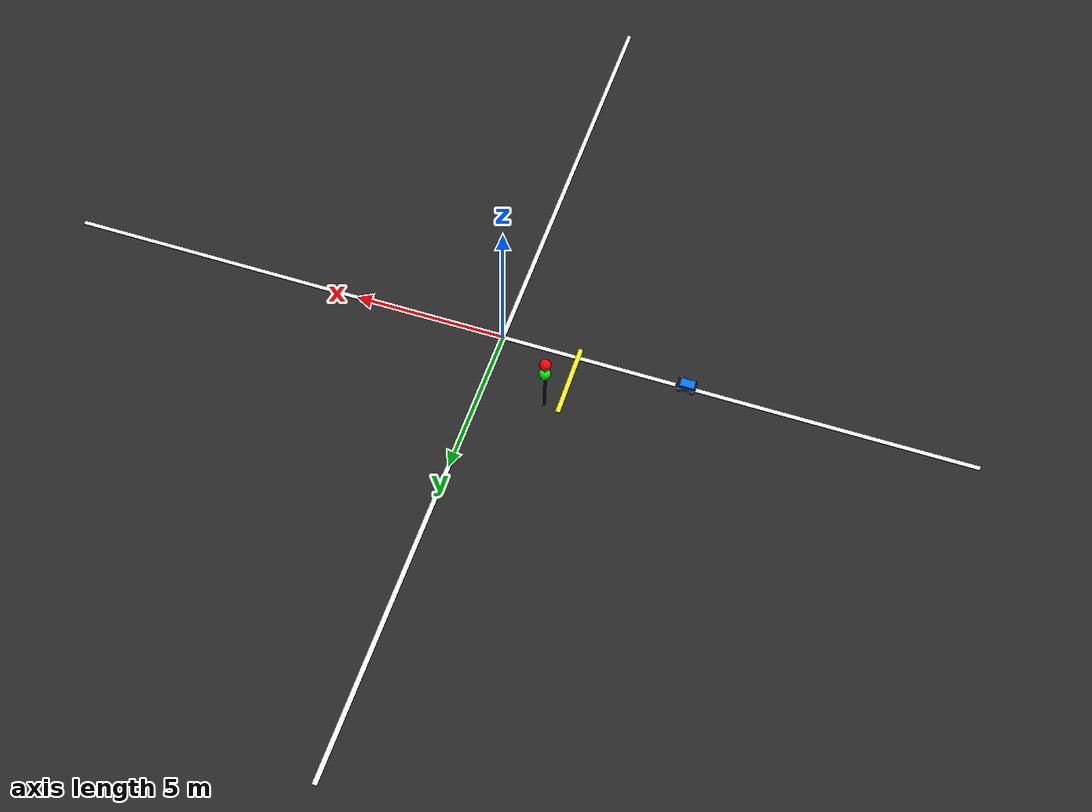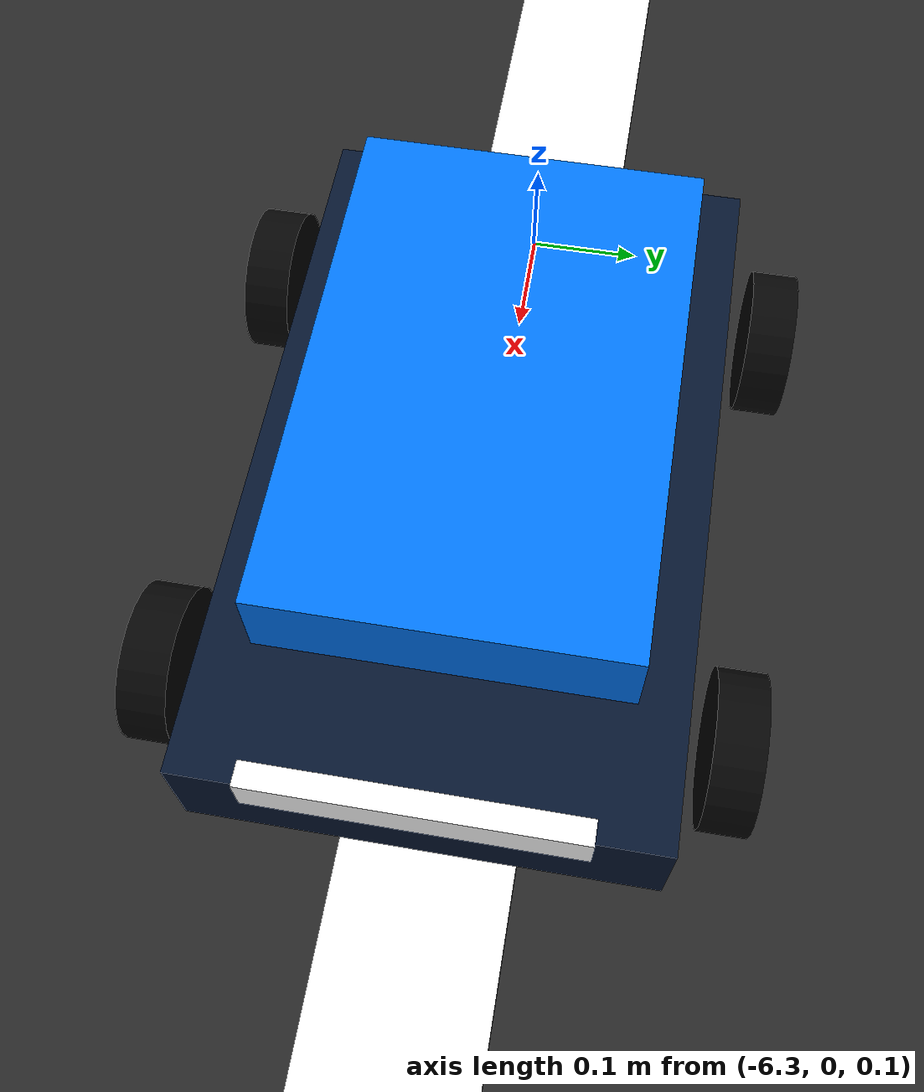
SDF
<?xml version="1.0" ?>
<sdf version="1.9">
  <world name="traffic_light_grid_world">
    <physics name="1ms" type="ignored"><max_step_size>0.001</max_step_size><real_time_factor>1.0</real_time_factor></physics>
    <plugin filename="gz-sim-physics-system" name="gz::sim::systems::Physics"/>
    <plugin filename="gz-sim-user-commands-system" name="gz::sim::systems::UserCommands"/>
    <plugin filename="gz-sim-scene-broadcaster-system" name="gz::sim::systems::SceneBroadcaster"/>
    <light type="directional" name="sun"><pose>0 0 10 0 0 0</pose><diffuse>0.8 0.8 0.8 1</diffuse><direction>-0.5 0.1 -0.9</direction></light>
    <model name="ground"><static>true</static><link name="ground_link"><collision name="collision"><geometry><plane><normal>0 0 1</normal><size>40 40</size></plane></geometry></collision><visual name="visual"><geometry><plane><normal>0 0 1</normal><size>40 40</size></plane></geometry><material><diffuse>0.15 0.15 0.15 1</diffuse></material></visual></link></model>
    <model name="intersection_markings"><static>true</static><link name="link">
      <visual name="east_west"><pose>0 0 0.012 0 0 0</pose><geometry><box><size>30 0.15 0.02</size></box></geometry><material><diffuse>1 1 1 1</diffuse></material></visual>
      <visual name="north_south"><pose>0 0 0.012 0 0 0</pose><geometry><box><size>0.15 30 0.02</size></box></geometry><material><diffuse>1 1 1 1</diffuse></material></visual>
      <visual name="stop_line"><pose>-2.5 0.9 0.015 0 0 0</pose><geometry><box><size>0.15 2.5 0.025</size></box></geometry><material><diffuse>1 1 0 1</diffuse></material></visual>
    </link></model>
    <model name="traffic_lights"><static>true</static><link name="link">
      <visual name="pole1"><pose>-2 2 1 0 0 0</pose><geometry><cylinder><radius>0.06</radius><length>2</length></cylinder></geometry><material><diffuse>0.05 0.05 0.05 1</diffuse></material></visual>
      <visual name="red1"><pose>-2 2 2.1 0 0 0</pose><geometry><sphere><radius>0.18</radius></sphere></geometry><material><diffuse>1 0 0 1</diffuse></material></visual>
      <visual name="green1"><pose>-2 2 1.65 0 0 0</pose><geometry><sphere><radius>0.18</radius></sphere></geometry><material><diffuse>0 1 0 1</diffuse></material></visual>
    </link></model>

    <!-- QCar-style robot included for Plan B demos. If you already spawned an official QCar, delete/ignore this include. -->
    <include>
      <uri>model://qcar_planb</uri>
      <name>qcar</name>
      <pose>-6 0 0.12 0 0 0</pose>
    </include>
  </world>
</sdf>

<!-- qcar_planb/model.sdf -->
<sdf version="1.9">
  <model name="qcar_planb">
    <pose>0 0 0.12 0 0 0</pose>

    <link name="base_link">
      <inertial>
        <mass>5.0</mass>
        <inertia><ixx>0.18</ixx><iyy>0.22</iyy><izz>0.28</izz></inertia>
      </inertial>
      <collision name="body_collision">
        <geometry><box><size>0.58 0.36 0.16</size></box></geometry>
      </collision>
      <visual name="lower_chassis">
        <pose>0 0 0.02 0 0 0</pose>
        <geometry><box><size>0.62 0.38 0.10</size></box></geometry>
        <material><ambient>0.02 0.08 0.18 1</ambient><diffuse>0.02 0.08 0.18 1</diffuse></material>
      </visual>
      <visual name="top_cover">
        <pose>-0.03 0 0.105 0 0 0</pose>
        <geometry><box><size>0.46 0.30 0.08</size></box></geometry>
        <material><ambient>0.0 0.45 0.95 1</ambient><diffuse>0.0 0.45 0.95 1</diffuse></material>
      </visual>
      <visual name="front_marker">
        <pose>0.31 0 0.08 0 0 0</pose>
        <geometry><box><size>0.02 0.26 0.04</size></box></geometry>
        <material><ambient>1 1 1 1</ambient><diffuse>1 1 1 1</diffuse></material>
      </visual>
    </link>

    <link name="front_left_wheel">
      <pose>0.20 0.23 0.0 1.5708 0 0</pose>
      <collision name="collision"><geometry><cylinder><radius>0.065</radius><length>0.04</length></cylinder></geometry></collision>
      <visual name="visual"><geometry><cylinder><radius>0.065</radius><length>0.04</length></cylinder></geometry><material><ambient>0.02 0.02 0.02 1</ambient><diffuse>0.02 0.02 0.02 1</diffuse></material></visual>
    </link>
    <link name="rear_left_wheel">
      <pose>-0.20 0.23 0.0 1.5708 0 0</pose>
      <collision name="collision"><geometry><cylinder><radius>0.065</radius><length>0.04</length></cylinder></geometry></collision>
      <visual name="visual"><geometry><cylinder><radius>0.065</radius><length>0.04</length></cylinder></geometry><material><ambient>0.02 0.02 0.02 1</ambient><diffuse>0.02 0.02 0.02 1</diffuse></material></visual>
    </link>
    <link name="front_right_wheel">
      <pose>0.20 -0.23 0.0 1.5708 0 0</pose>
      <collision name="collision"><geometry><cylinder><radius>0.065</radius><length>0.04</length></cylinder></geometry></collision>
      <visual name="visual"><geometry><cylinder><radius>0.065</radius><length>0.04</length></cylinder></geometry><material><ambient>0.02 0.02 0.02 1</ambient><diffuse>0.02 0.02 0.02 1</diffuse></material></visual>
    </link>
    <link name="rear_right_wheel">
      <pose>-0.20 -0.23 0.0 1.5708 0 0</pose>
      <collision name="collision"><geometry><cylinder><radius>0.065</radius><length>0.04</length></cylinder></geometry></collision>
      <visual name="visual"><geometry><cylinder><radius>0.065</radius><length>0.04</length></cylinder></geometry><material><ambient>0.02 0.02 0.02 1</ambient><diffuse>0.02 0.02 0.02 1</diffuse></material></visual>
    </link>

    <joint name="front_left_wheel_joint" type="revolute"><parent>base_link</parent><child>front_left_wheel</child><axis><xyz>0 0 1</xyz></axis></joint>
    <joint name="rear_left_wheel_joint" type="revolute"><parent>base_link</parent><child>rear_left_wheel</child><axis><xyz>0 0 1</xyz></axis></joint>
    <joint name="front_right_wheel_joint" type="revolute"><parent>base_link</parent><child>front_right_wheel</child><axis><xyz>0 0 1</xyz></axis></joint>
    <joint name="rear_right_wheel_joint" type="revolute"><parent>base_link</parent><child>rear_right_wheel</child><axis><xyz>0 0 1</xyz></axis></joint>

    <link name="lidar_link">
      <pose>0.12 0 0.23 0 0 0</pose>
      <sensor name="lidar" type="gpu_lidar">
        <topic>/qcar/scan</topic>
        <update_rate>10</update_rate>
        <ray>
          <scan><horizontal><samples>720</samples><resolution>1</resolution><min_angle>-3.14159</min_angle><max_angle>3.14159</max_angle></horizontal></scan>
          <range><min>0.08</min><max>12.0</max><resolution>0.01</resolution></range>
        </ray>
        <always_on>true</always_on>
        <visualize>true</visualize>
      </sensor>
    </link>
    <joint name="lidar_joint" type="fixed"><parent>base_link</parent><child>lidar_link</child></joint>

    <link name="camera_link">
      <pose>0.31 0 0.20 0 0 0</pose>
      <sensor name="front_camera" type="camera">
        <topic>/qcar/camera/image_raw</topic>
        <update_rate>15</update_rate>
        <camera>
          <horizontal_fov>1.047</horizontal_fov>
          <image><width>640</width><height>480</height><format>R8G8B8</format></image>
          <clip><near>0.05</near><far>50</far></clip>
        </camera>
        <always_on>true</always_on>
        <visualize>true</visualize>
      </sensor>
    </link>
    <joint name="camera_joint" type="fixed"><parent>base_link</parent><child>camera_link</child></joint>

    <plugin filename="gz-sim-diff-drive-system" name="gz::sim::systems::DiffDrive">
      <left_joint>front_left_wheel_joint</left_joint>
      <left_joint>rear_left_wheel_joint</left_joint>
      <right_joint>front_right_wheel_joint</right_joint>
      <right_joint>rear_right_wheel_joint</right_joint>
      <wheel_separation>0.46</wheel_separation>
      <wheel_radius>0.065</wheel_radius>
      <topic>/qcar/cmd_vel</topic>
      <odom_topic>/qcar/odom</odom_topic>
      <tf_topic>/tf</tf_topic>
      <frame_id>odom</frame_id>
      <child_frame_id>base_link</child_frame_id>
      <odom_publish_frequency>30</odom_publish_frequency>
    </plugin>
  </model>
</sdf>
